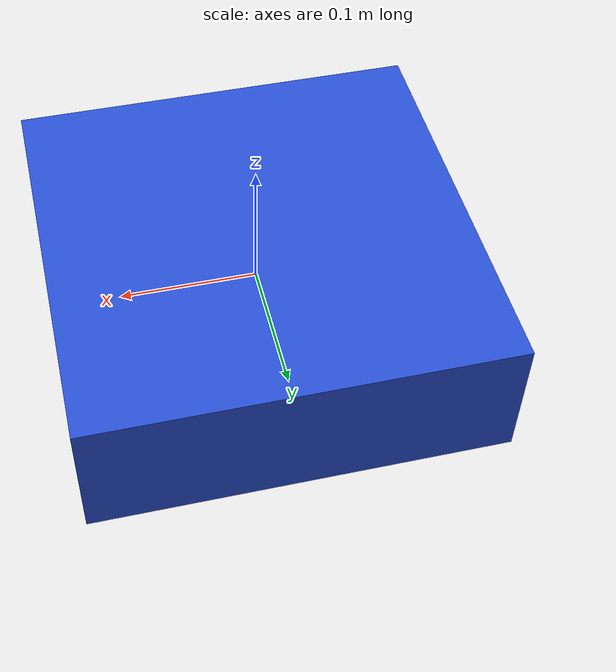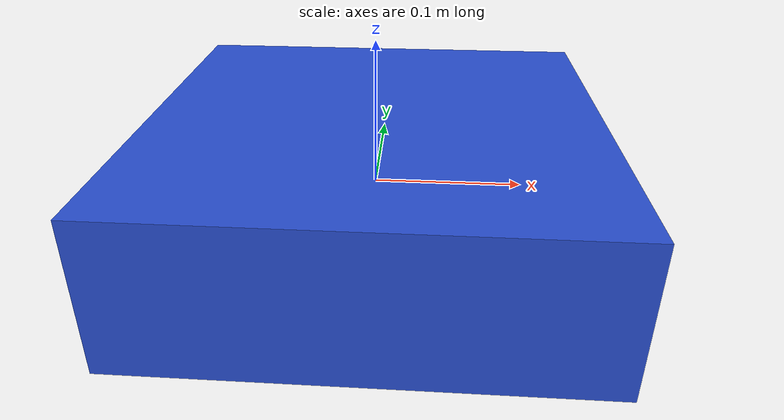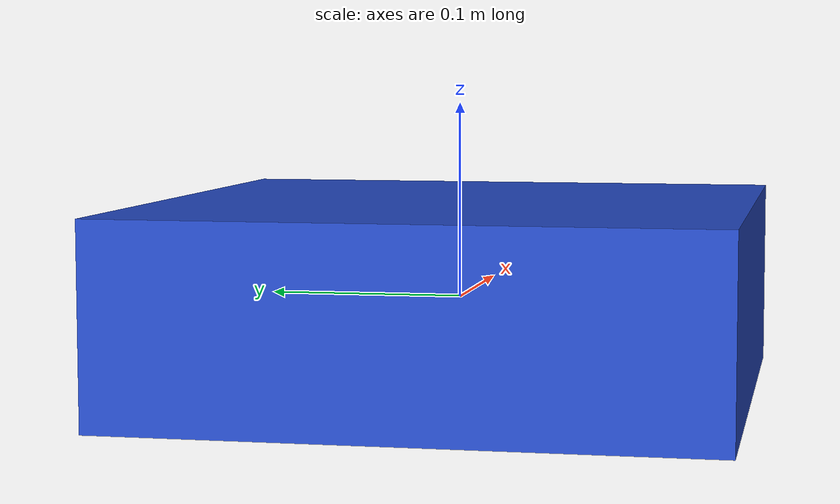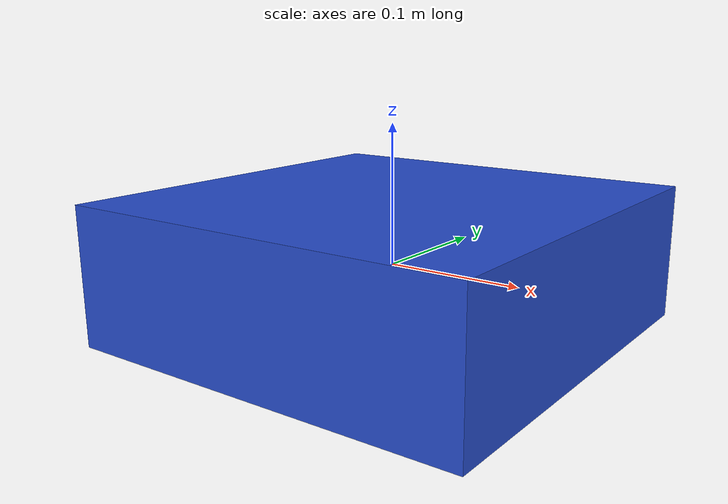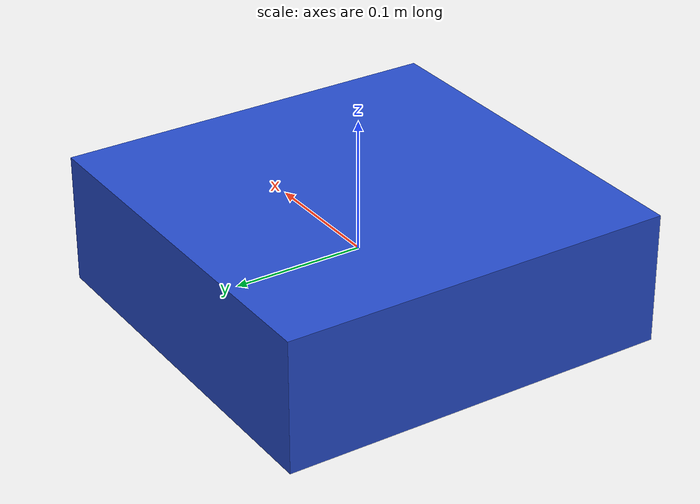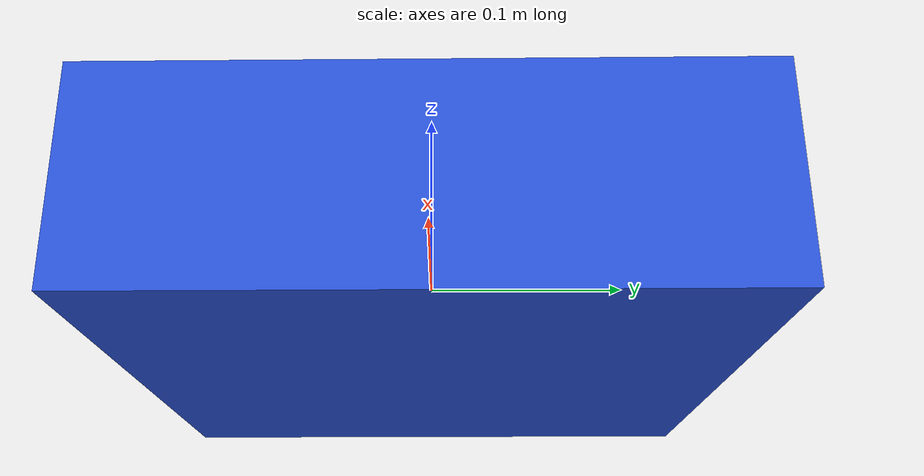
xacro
<?xml version="1.0"?>
<robot name="omni_robot" xmlns:xacro="http://www.ros.org/wiki/xacro">

  <!-- Parameters (meters) -->
  <xacro:property name="robot_width" value="0.3" />
  <xacro:property name="robot_length" value="0.3" />
  <xacro:property name="robot_height" value="0.1" />
  <xacro:property name="chassis_mass" value="3.0" />

  <!-- Base link -->
  <link name="base_link">
    <visual>
      <geometry>
        <box size="${robot_width} ${robot_length} ${robot_height}"/>
      </geometry>
      <material name="blue"/>
    </visual>
    <collision>
      <geometry>
        <box size="${robot_width} ${robot_length} ${robot_height}"/>
      </geometry>
    </collision>
    <inertial>
      <mass value="${chassis_mass}"/>
      <inertia ixx="0.1" ixy="0.0" ixz="0.0" iyy="0.1" iyz="0.0" izz="0.1"/>
    </inertial>
  </link>

  <!-- LiDAR (2D, 360°) mounted on top -->
  <xacro:property name="lidar_z" value="${robot_height + 0.01}" />
  <joint name="lidar_joint" type="fixed">
    <parent link="base_link"/>
    <child link="lidar_link"/>
    <origin xyz="0 0 ${lidar_z}" rpy="0 0 0"/>
  </joint>
  <link name="lidar_link"/>
  <gazebo reference="lidar_link">
    <sensor name="lidar" type="ray">
      <pose>0 0 0 0 0 0</pose>
      <visualize>true</visualize>
      <update_rate>10</update_rate>
      <ray>
        <scan>
          <horizontal>
            <samples>360</samples>
            <resolution>1</resolution>
            <min_angle>-3.14159</min_angle>
            <max_angle>3.14159</max_angle>
          </horizontal>
        </scan>
        <range>
          <min>0.1</min>
          <max>10.0</max>
          <resolution>0.01</resolution>
        </range>
      </ray>
      <plugin name="gazebo_ros_laser" filename="libgazebo_ros_ray_sensor.so">
        <ros>
          <namespace>/omni_robot</namespace>
          <remapping>~/out:=scan</remapping>
        </ros>
        <output_type>sensor_msgs/LaserScan</output_type>
        <frame_name>lidar_link</frame_name>
      </plugin>
    </sensor>
  </gazebo>

  <!-- Camera (front) -->
  <xacro:property name="camera_z" value="${robot_height/2}" />
  <xacro:property name="camera_x" value="${robot_length/2 + 0.05}" />
  <joint name="camera_joint" type="fixed">
    <parent link="base_link"/>
    <child link="camera_link"/>
    <origin xyz="${camera_x} 0 ${camera_z}" rpy="0 0 0"/>
  </joint>
  <link name="camera_link"/>
  <gazebo reference="camera_link">
    <sensor name="camera" type="camera">
      <pose>0 0 0 0 0 0</pose>
      <visualize>true</visualize>
      <update_rate>30</update_rate>
      <camera>
        <horizontal_fov>1.047</horizontal_fov>
        <image>
          <width>640</width>
          <height>480</height>
          <format>R8G8B8</format>
        </image>
        <clip>
          <near>0.05</near>
          <far>30.0</far>
        </clip>
      </camera>
      <plugin name="gazebo_ros_camera" filename="libgazebo_ros_camera.so">
        <topicName>/camera/image_raw</topicName>
        <frameName>camera_link</frameName>
      </plugin>
    </sensor>
  </gazebo>

  <!-- Gazebo plugin for omnidirectional motion (planar_move) -->
  <gazebo>
    <plugin name="planar_move" filename="libgazebo_ros_planar_move.so">
      <robotNamespace>/omni_robot</robotNamespace>
      <commandTopic>cmd_vel</commandTopic>
      <odometryTopic>odom</odometryTopic>
      <odometryFrame>odom</odometryFrame>
      <robotBaseFrame>base_link</robotBaseFrame>
      <updateRate>50.0</updateRate>
    </plugin>
  </gazebo>
</robot>
